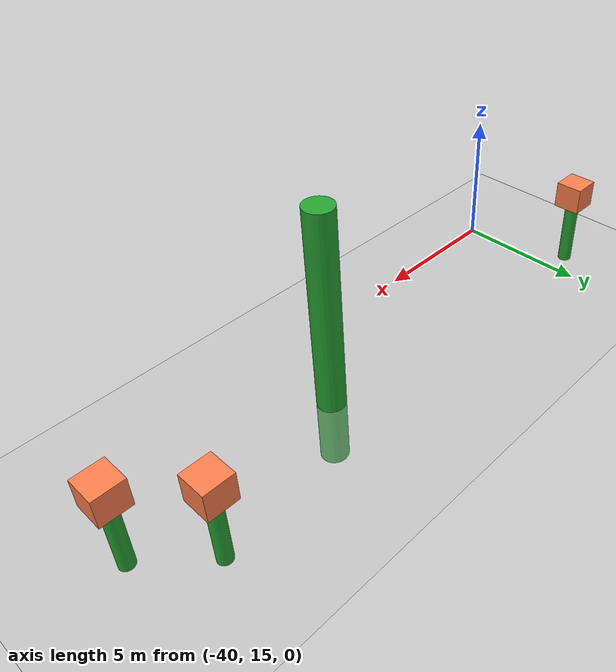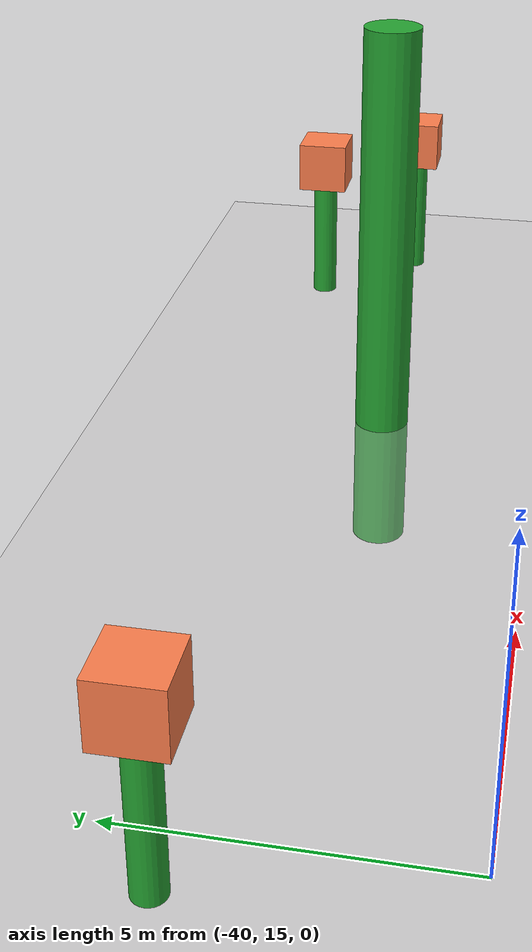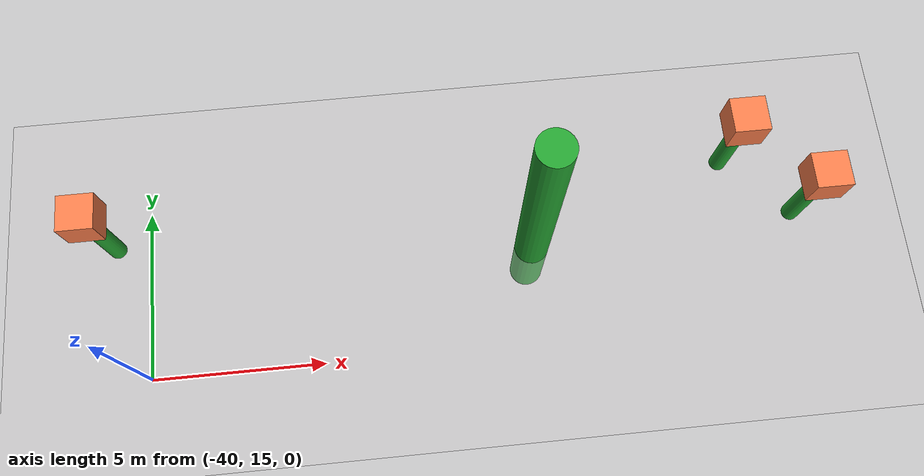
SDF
<sdf version="1.7">
 <world name="default">
  <model name="ground_plane">
   <static>1</static>
   <link name="link">
    <collision name="collision">
     <geometry><plane><normal>0 0 1</normal><size>100 100</size></plane></geometry>
     <surface>
      <contact><collide_bitmask>65535</collide_bitmask></contact>
      <friction><ode><mu>100</mu><mu2>50</mu2></ode></friction>
     </surface>
    </collision>
    <visual name="visual">
     <cast_shadows>0</cast_shadows>
     <geometry><plane><normal>0 0 1</normal><size>100 100</size></plane></geometry>
     <material>
      <script><uri>file://media/materials/scripts/gazebo.material</uri><name>Gazebo/Grey</name></script>
     </material>
    </visual>
   </link>
  </model>
  <model name="unit_cylinder_green_2_clone_clone_8">
   <link name="link">
    <inertial>
     <mass>1</mass>
     <inertia><ixx>0.145833</ixx><ixy>0</ixy><ixz>0</ixz><iyy>0.145833</iyy><iyz>0</iyz><izz>0.125</izz></inertia>
    </inertial>
    <visual name="visual">
     <geometry><cylinder><radius>0.5</radius><length>10</length></cylinder></geometry>
     <material>
      <script><name>Gazebo/Green</name><uri>file://media/materials/scripts/gazebo.material</uri></script>
      <shader type="pixel"><normal_map>__default__</normal_map></shader>
      <ambient>0 1 0.3 1</ambient>
      <diffuse>0.7 0.7 0.7 1</diffuse>
      <specular>0.01 0.01 0.01 1</specular>
      <emissive>0 0 0 1</emissive>
     </material>
    </visual>
    <collision name="collision">
     <geometry><cylinder><radius>0.5</radius><length>5</length></cylinder></geometry>
     <surface>
      <friction>
       <ode><mu>1</mu><mu2>1</mu2><fdir1>0 0 0</fdir1><slip1>0</slip1><slip2>0</slip2></ode>
       <torsional>
        <coefficient>1</coefficient>
        <patch_radius>0</patch_radius>
        <surface_radius>0</surface_radius>
        <use_patch_radius>1</use_patch_radius>
        <ode><slip>0</slip></ode>
       </torsional>
      </friction>
      <bounce><restitution_coefficient>0</restitution_coefficient><threshold>1e+06</threshold></bounce>
      <contact>
       <collide_without_contact>0</collide_without_contact>
       <collide_without_contact_bitmask>1</collide_without_contact_bitmask>
       <collide_bitmask>1</collide_bitmask>
       <ode>
        <soft_cfm>0</soft_cfm>
        <soft_erp>0.2</soft_erp>
        <kp>1e+13</kp>
        <kd>1</kd>
        <max_vel>0.01</max_vel>
        <min_depth>0</min_depth>
       </ode>
       <bullet>
        <split_impulse>1</split_impulse>
        <split_impulse_penetration_threshold>-0.01</split_impulse_penetration_threshold>
        <soft_cfm>0</soft_cfm>
        <soft_erp>0.2</soft_erp>
        <kp>1e+13</kp>
        <kd>1</kd>
       </bullet>
      </contact>
     </surface>
    </collision>
   </link>
   <static>1</static>
   <pose>-28.7386 17.9151 2.5 0 0 -0.000967</pose>
  </model>
  <model name="unit_cylinder_green_2_clone_clone_3_clone_0_clone_0_clone_86">
   <link name="link">
    <inertial>
     <mass>1</mass>
     <inertia><ixx>0.145833</ixx><ixy>0</ixy><ixz>0</ixz><iyy>0.145833</iyy><iyz>0</iyz><izz>0.125</izz></inertia>
    </inertial>
    <pose>0 0 -1.25 0 -0 0</pose>
    <visual name="visual">
     <geometry><cylinder><radius>0.25</radius><length>2.5</length></cylinder></geometry>
     <material>
      <script><name>Gazebo/Green</name><uri>file://media/materials/scripts/gazebo.material</uri></script>
      <shader type="pixel"><normal_map>__default__</normal_map></shader>
      <ambient>0 1 0.3 1</ambient>
      <diffuse>0.7 0.7 0.7 1</diffuse>
      <specular>0.01 0.01 0.01 1</specular>
      <emissive>0 0 0 1</emissive>
     </material>
    </visual>
    <collision name="collision">
     <geometry><cylinder><radius>0.5</radius><length>5</length></cylinder></geometry>
     <surface>
      <friction>
       <ode><mu>1</mu><mu2>1</mu2><fdir1>0 0 0</fdir1><slip1>0</slip1><slip2>0</slip2></ode>
       <torsional>
        <coefficient>1</coefficient>
        <patch_radius>0</patch_radius>
        <surface_radius>0</surface_radius>
        <use_patch_radius>1</use_patch_radius>
        <ode><slip>0</slip></ode>
       </torsional>
      </friction>
      <bounce><restitution_coefficient>0</restitution_coefficient><threshold>1e+06</threshold></bounce>
      <contact>
       <collide_without_contact>0</collide_without_contact>
       <collide_without_contact_bitmask>1</collide_without_contact_bitmask>
       <collide_bitmask>1</collide_bitmask>
       <ode>
        <soft_cfm>0</soft_cfm>
        <soft_erp>0.2</soft_erp>
        <kp>1e+13</kp>
        <kd>1</kd>
        <max_vel>0.01</max_vel>
        <min_depth>0</min_depth>
       </ode>
       <bullet>
        <split_impulse>1</split_impulse>
        <split_impulse_penetration_threshold>-0.01</split_impulse_penetration_threshold>
        <soft_cfm>0</soft_cfm>
        <soft_erp>0.2</soft_erp>
        <kp>1e+13</kp>
        <kd>1</kd>
       </bullet>
      </contact>
     </surface>
    </collision>
   </link>
   <link name="link_3">
    <inertial>
     <mass>1</mass>
     <inertia>
      <ixx>0.166667</ixx>
      <ixy>0</ixy>
      <ixz>0</ixz>
      <iyy>0.166667</iyy>
      <iyz>0</iyz>
      <izz>0.166667</izz>
     </inertia>
    </inertial>
    <pose>0 0 0.5 0 -0 0.000935</pose>
    <visual name="visual">
     <geometry><box><size>1 1 1</size></box></geometry>
     <material>
      <lighting>1</lighting>
      <script><uri>file://media/materials/scripts/gazebo.material</uri><name>Gazebo/Grey</name></script>
      <shader type="pixel"><normal_map>__default__</normal_map></shader>
      <ambient>1 0.5 0.3 1</ambient>
      <diffuse>0.7 0.7 0.7 1</diffuse>
      <specular>0.01 0.01 0.01 1</specular>
      <emissive>0 0 0 1</emissive>
     </material>
    </visual>
    <collision name="collision">
     <geometry><box><size>1 1 1</size></box></geometry>
     <surface>
      <friction>
       <ode><mu>1</mu><mu2>1</mu2><fdir1>0 0 0</fdir1><slip1>0</slip1><slip2>0</slip2></ode>
       <torsional>
        <coefficient>1</coefficient>
        <patch_radius>0</patch_radius>
        <surface_radius>0</surface_radius>
        <use_patch_radius>1</use_patch_radius>
        <ode><slip>0</slip></ode>
       </torsional>
      </friction>
      <bounce><restitution_coefficient>0</restitution_coefficient><threshold>1e+06</threshold></bounce>
      <contact>
       <collide_without_contact>0</collide_without_contact>
       <collide_without_contact_bitmask>1</collide_without_contact_bitmask>
       <collide_bitmask>1</collide_bitmask>
       <ode>
        <soft_cfm>0</soft_cfm>
        <soft_erp>0.2</soft_erp>
        <kp>1e+13</kp>
        <kd>1</kd>
        <max_vel>0.01</max_vel>
        <min_depth>0</min_depth>
       </ode>
       <bullet>
        <split_impulse>1</split_impulse>
        <split_impulse_penetration_threshold>-0.01</split_impulse_penetration_threshold>
        <soft_cfm>0</soft_cfm>
        <soft_erp>0.2</soft_erp>
        <kp>1e+13</kp>
        <kd>1</kd>
       </bullet>
      </contact>
     </surface>
    </collision>
   </link>
   <static>1</static>
   <pose>-22.7303 20.0552 2.49999 0 0 -0.000935</pose>
  </model>
  <model name="unit_cylinder_green_2_clone_clone_3_clone_0_clone_0_clone_87">
   <link name="link">
    <inertial>
     <mass>1</mass>
     <inertia><ixx>0.145833</ixx><ixy>0</ixy><ixz>0</ixz><iyy>0.145833</iyy><iyz>0</iyz><izz>0.125</izz></inertia>
    </inertial>
    <pose>0 0 -1.25 0 -0 0</pose>
    <visual name="visual">
     <geometry><cylinder><radius>0.25</radius><length>2.5</length></cylinder></geometry>
     <material>
      <script><name>Gazebo/Green</name><uri>file://media/materials/scripts/gazebo.material</uri></script>
      <shader type="pixel"><normal_map>__default__</normal_map></shader>
      <ambient>0 1 0.3 1</ambient>
      <diffuse>0.7 0.7 0.7 1</diffuse>
      <specular>0.01 0.01 0.01 1</specular>
      <emissive>0 0 0 1</emissive>
     </material>
    </visual>
    <collision name="collision">
     <geometry><cylinder><radius>0.5</radius><length>5</length></cylinder></geometry>
     <surface>
      <friction>
       <ode><mu>1</mu><mu2>1</mu2><fdir1>0 0 0</fdir1><slip1>0</slip1><slip2>0</slip2></ode>
       <torsional>
        <coefficient>1</coefficient>
        <patch_radius>0</patch_radius>
        <surface_radius>0</surface_radius>
        <use_patch_radius>1</use_patch_radius>
        <ode><slip>0</slip></ode>
       </torsional>
      </friction>
      <bounce><restitution_coefficient>0</restitution_coefficient><threshold>1e+06</threshold></bounce>
      <contact>
       <collide_without_contact>0</collide_without_contact>
       <collide_without_contact_bitmask>1</collide_without_contact_bitmask>
       <collide_bitmask>1</collide_bitmask>
       <ode>
        <soft_cfm>0</soft_cfm>
        <soft_erp>0.2</soft_erp>
        <kp>1e+13</kp>
        <kd>1</kd>
        <max_vel>0.01</max_vel>
        <min_depth>0</min_depth>
       </ode>
       <bullet>
        <split_impulse>1</split_impulse>
        <split_impulse_penetration_threshold>-0.01</split_impulse_penetration_threshold>
        <soft_cfm>0</soft_cfm>
        <soft_erp>0.2</soft_erp>
        <kp>1e+13</kp>
        <kd>1</kd>
       </bullet>
      </contact>
     </surface>
    </collision>
   </link>
   <link name="link_3">
    <inertial>
     <mass>1</mass>
     <inertia>
      <ixx>0.166667</ixx>
      <ixy>0</ixy>
      <ixz>0</ixz>
      <iyy>0.166667</iyy>
      <iyz>0</iyz>
      <izz>0.166667</izz>
     </inertia>
    </inertial>
    <pose>0 0 0.5 0 -0 0.000935</pose>
    <visual name="visual">
     <geometry><box><size>1 1 1</size></box></geometry>
     <material>
      <lighting>1</lighting>
      <script><uri>file://media/materials/scripts/gazebo.material</uri><name>Gazebo/Grey</name></script>
      <shader type="pixel"><normal_map>__default__</normal_map></shader>
      <ambient>1 0.5 0.3 1</ambient>
      <diffuse>0.7 0.7 0.7 1</diffuse>
      <specular>0.01 0.01 0.01 1</specular>
      <emissive>0 0 0 1</emissive>
     </material>
    </visual>
    <collision name="collision">
     <geometry><box><size>1 1 1</size></box></geometry>
     <surface>
      <friction>
       <ode><mu>1</mu><mu2>1</mu2><fdir1>0 0 0</fdir1><slip1>0</slip1><slip2>0</slip2></ode>
       <torsional>
        <coefficient>1</coefficient>
        <patch_radius>0</patch_radius>
        <surface_radius>0</surface_radius>
        <use_patch_radius>1</use_patch_radius>
        <ode><slip>0</slip></ode>
       </torsional>
      </friction>
      <bounce><restitution_coefficient>0</restitution_coefficient><threshold>1e+06</threshold></bounce>
      <contact>
       <collide_without_contact>0</collide_without_contact>
       <collide_without_contact_bitmask>1</collide_without_contact_bitmask>
       <collide_bitmask>1</collide_bitmask>
       <ode>
        <soft_cfm>0</soft_cfm>
        <soft_erp>0.2</soft_erp>
        <kp>1e+13</kp>
        <kd>1</kd>
        <max_vel>0.01</max_vel>
        <min_depth>0</min_depth>
       </ode>
       <bullet>
        <split_impulse>1</split_impulse>
        <split_impulse_penetration_threshold>-0.01</split_impulse_penetration_threshold>
        <soft_cfm>0</soft_cfm>
        <soft_erp>0.2</soft_erp>
        <kp>1e+13</kp>
        <kd>1</kd>
       </bullet>
      </contact>
     </surface>
    </collision>
   </link>
   <static>1</static>
   <pose>-20.8471 18.2568 2.49999 0 0 -0.000935</pose>
  </model>
  <model name="unit_cylinder_green_2_clone_clone_3_clone_0_clone_0_clone_89">
   <link name="link">
    <inertial>
     <mass>1</mass>
     <inertia><ixx>0.145833</ixx><ixy>0</ixy><ixz>0</ixz><iyy>0.145833</iyy><iyz>0</iyz><izz>0.125</izz></inertia>
    </inertial>
    <pose>0 0 -1.25 0 -0 0</pose>
    <visual name="visual">
     <geometry><cylinder><radius>0.25</radius><length>2.5</length></cylinder></geometry>
     <material>
      <script><name>Gazebo/Green</name><uri>file://media/materials/scripts/gazebo.material</uri></script>
      <shader type="pixel"><normal_map>__default__</normal_map></shader>
      <ambient>0 1 0.3 1</ambient>
      <diffuse>0.7 0.7 0.7 1</diffuse>
      <specular>0.01 0.01 0.01 1</specular>
      <emissive>0 0 0 1</emissive>
     </material>
    </visual>
    <collision name="collision">
     <geometry><cylinder><radius>0.5</radius><length>5</length></cylinder></geometry>
     <surface>
      <friction>
       <ode><mu>1</mu><mu2>1</mu2><fdir1>0 0 0</fdir1><slip1>0</slip1><slip2>0</slip2></ode>
       <torsional>
        <coefficient>1</coefficient>
        <patch_radius>0</patch_radius>
        <surface_radius>0</surface_radius>
        <use_patch_radius>1</use_patch_radius>
        <ode><slip>0</slip></ode>
       </torsional>
      </friction>
      <bounce><restitution_coefficient>0</restitution_coefficient><threshold>1e+06</threshold></bounce>
      <contact>
       <collide_without_contact>0</collide_without_contact>
       <collide_without_contact_bitmask>1</collide_without_contact_bitmask>
       <collide_bitmask>1</collide_bitmask>
       <ode>
        <soft_cfm>0</soft_cfm>
        <soft_erp>0.2</soft_erp>
        <kp>1e+13</kp>
        <kd>1</kd>
        <max_vel>0.01</max_vel>
        <min_depth>0</min_depth>
       </ode>
       <bullet>
        <split_impulse>1</split_impulse>
        <split_impulse_penetration_threshold>-0.01</split_impulse_penetration_threshold>
        <soft_cfm>0</soft_cfm>
        <soft_erp>0.2</soft_erp>
        <kp>1e+13</kp>
        <kd>1</kd>
       </bullet>
      </contact>
     </surface>
    </collision>
   </link>
   <link name="link_3">
    <inertial>
     <mass>1</mass>
     <inertia>
      <ixx>0.166667</ixx>
      <ixy>0</ixy>
      <ixz>0</ixz>
      <iyy>0.166667</iyy>
      <iyz>0</iyz>
      <izz>0.166667</izz>
     </inertia>
    </inertial>
    <pose>0 0 0.5 0 -0 0.000935</pose>
    <visual name="visual">
     <geometry><box><size>1 1 1</size></box></geometry>
     <material>
      <lighting>1</lighting>
      <script><uri>file://media/materials/scripts/gazebo.material</uri><name>Gazebo/Grey</name></script>
      <shader type="pixel"><normal_map>__default__</normal_map></shader>
      <ambient>1 0.5 0.3 1</ambient>
      <diffuse>0.7 0.7 0.7 1</diffuse>
      <specular>0.01 0.01 0.01 1</specular>
      <emissive>0 0 0 1</emissive>
     </material>
    </visual>
    <collision name="collision">
     <geometry><box><size>1 1 1</size></box></geometry>
     <surface>
      <friction>
       <ode><mu>1</mu><mu2>1</mu2><fdir1>0 0 0</fdir1><slip1>0</slip1><slip2>0</slip2></ode>
       <torsional>
        <coefficient>1</coefficient>
        <patch_radius>0</patch_radius>
        <surface_radius>0</surface_radius>
        <use_patch_radius>1</use_patch_radius>
        <ode><slip>0</slip></ode>
       </torsional>
      </friction>
      <bounce><restitution_coefficient>0</restitution_coefficient><threshold>1e+06</threshold></bounce>
      <contact>
       <collide_without_contact>0</collide_without_contact>
       <collide_without_contact_bitmask>1</collide_without_contact_bitmask>
       <collide_bitmask>1</collide_bitmask>
       <ode>
        <soft_cfm>0</soft_cfm>
        <soft_erp>0.2</soft_erp>
        <kp>1e+13</kp>
        <kd>1</kd>
        <max_vel>0.01</max_vel>
        <min_depth>0</min_depth>
       </ode>
       <bullet>
        <split_impulse>1</split_impulse>
        <split_impulse_penetration_threshold>-0.01</split_impulse_penetration_threshold>
        <soft_cfm>0</soft_cfm>
        <soft_erp>0.2</soft_erp>
        <kp>1e+13</kp>
        <kd>1</kd>
       </bullet>
      </contact>
     </surface>
    </collision>
   </link>
   <static>1</static>
   <pose>-41 19 2.49999 0 0 -0.000935</pose>
  </model>
 </world>
</sdf>
